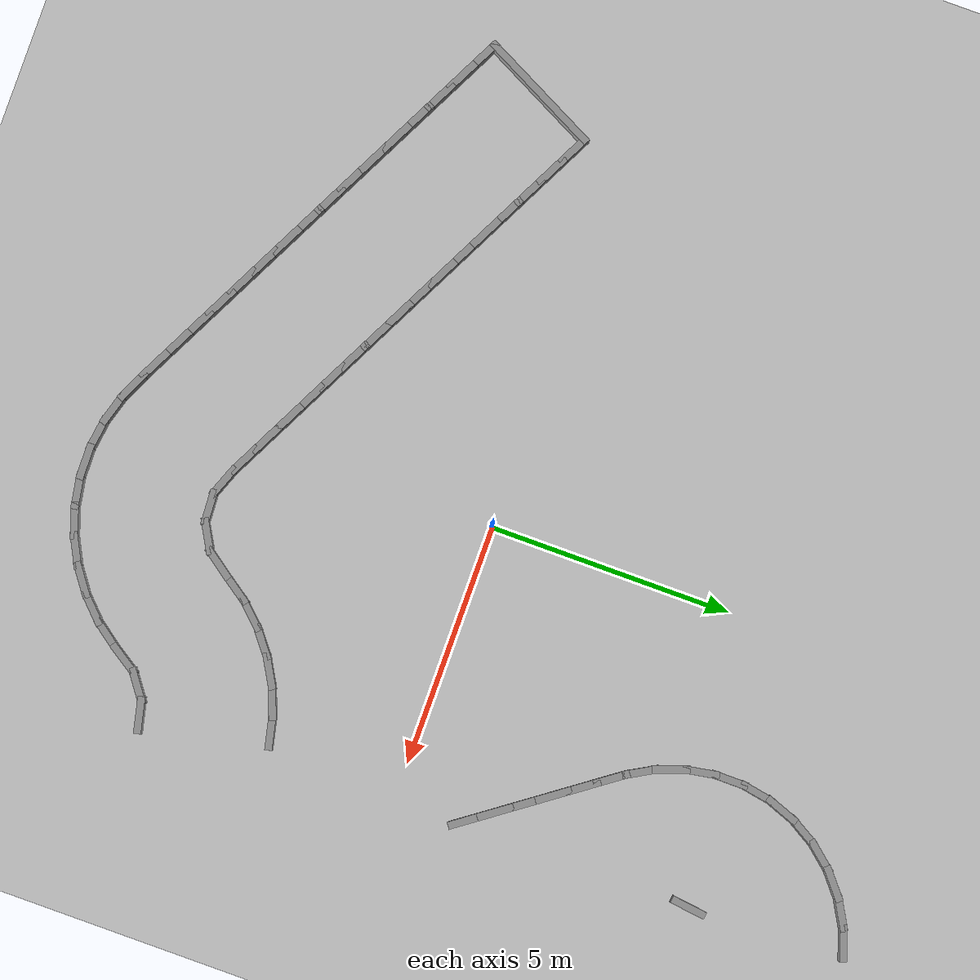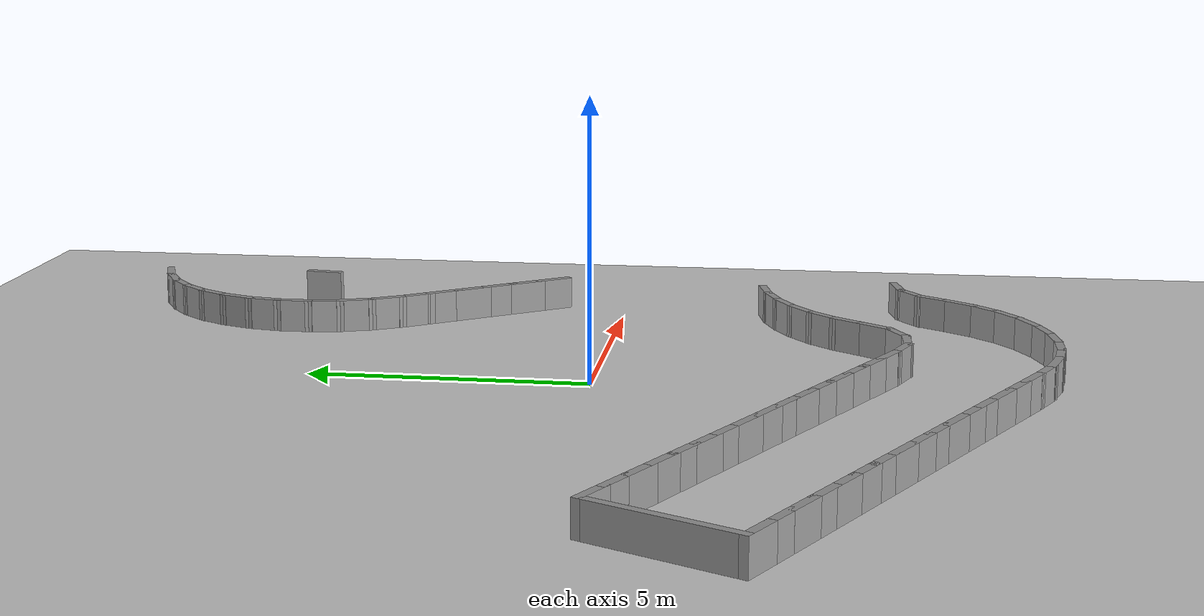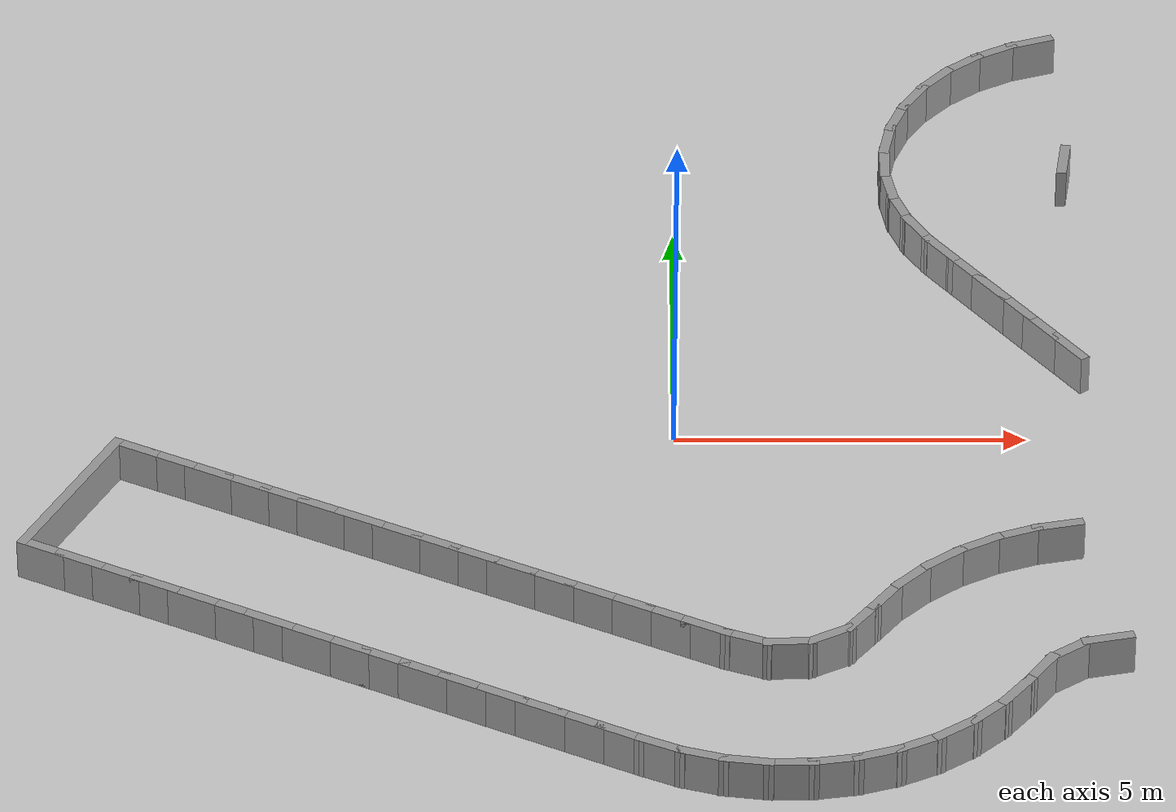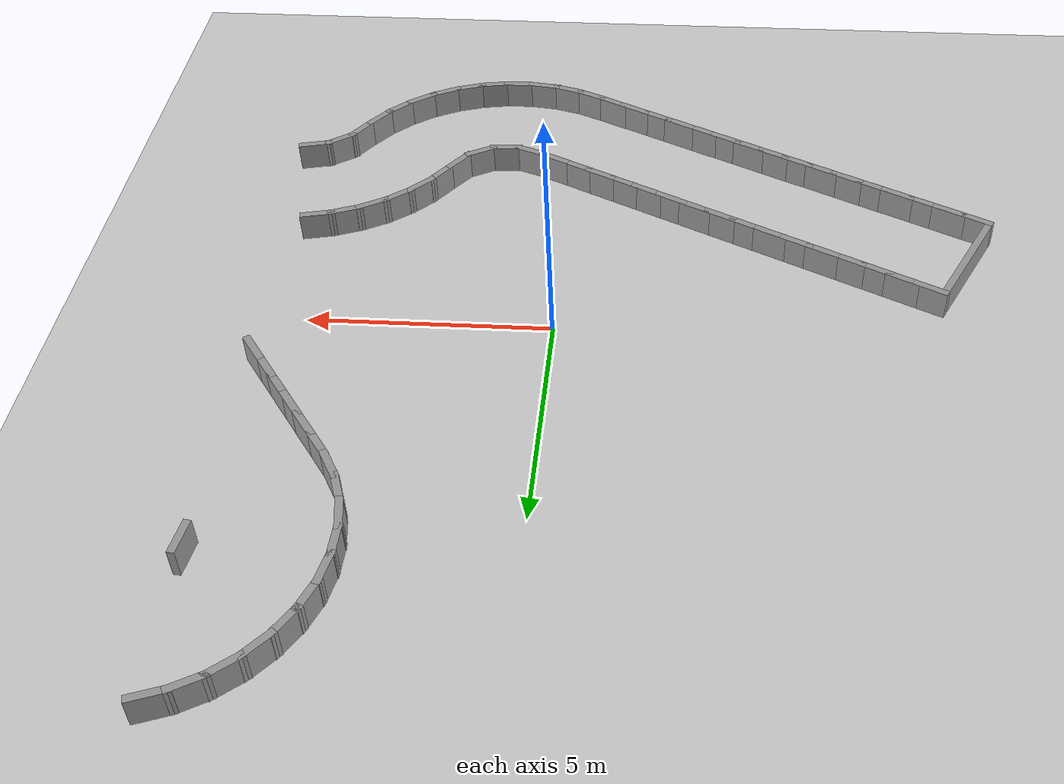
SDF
<sdf version="1.7">
 <world name="default">
  <model name="ground_plane">
   <static>1</static>
   <link name="link">
    <collision name="collision">
     <geometry><plane><normal>0 0 1</normal><size>100 100</size></plane></geometry>
     <surface><friction><ode><mu>100</mu><mu2>50</mu2></ode></friction></surface>
    </collision>
    <visual name="visual">
     <cast_shadows>0</cast_shadows>
     <geometry><plane><normal>0 0 1</normal><size>100 100</size></plane></geometry>
     <material>
      <script><uri>file://media/materials/scripts/gazebo.material</uri><name>Gazebo/Grey</name></script>
     </material>
    </visual>
   </link>
  </model>
  <model name="rand_turn_02">
   <link name="Wall_0">
    <collision name="Wall_0_Collision">
     <geometry><box><size>0.7500 0.1500 0.6000</size></box></geometry>
     <pose>0 0 0.3000 0 -0 0</pose>
    </collision>
    <visual name="Wall_0_Visual">
     <pose>0 0 0.3000 0 -0 0</pose>
     <geometry><box><size>0.7500 0.1500 0.6000</size></box></geometry>
     <material>
      <script><uri>file://media/materials/scripts/gazebo.material</uri><name>Gazebo/Grey</name></script>
      <ambient>1 1 1 1</ambient>
     </material>
    </visual>
    <pose>-7.6089 -1.0157 0 0 -0 -0.46992</pose>
   </link>
   <link name="Wall_1">
    <collision name="Wall_1_Collision">
     <geometry><box><size>0.7500 0.1500 0.6000</size></box></geometry>
     <pose>0 0 0.3000 0 -0 0</pose>
    </collision>
    <visual name="Wall_1_Visual">
     <pose>0 0 0.3000 0 -0 0</pose>
     <geometry><box><size>0.7500 0.1500 0.6000</size></box></geometry>
     <material>
      <script><uri>file://media/materials/scripts/gazebo.material</uri><name>Gazebo/Grey</name></script>
      <ambient>1 1 1 1</ambient>
     </material>
    </visual>
    <pose>-7.0739 -1.2874 0 0 -0 -0.46992</pose>
   </link>
   <link name="Wall_2">
    <collision name="Wall_2_Collision">
     <geometry><box><size>0.7500 0.1500 0.6000</size></box></geometry>
     <pose>0 0 0.3000 0 -0 0</pose>
    </collision>
    <visual name="Wall_2_Visual">
     <pose>0 0 0.3000 0 -0 0</pose>
     <geometry><box><size>0.7500 0.1500 0.6000</size></box></geometry>
     <material>
      <script><uri>file://media/materials/scripts/gazebo.material</uri><name>Gazebo/Grey</name></script>
      <ambient>1 1 1 1</ambient>
     </material>
    </visual>
    <pose>-6.5390 -1.5591 0 0 -0 -0.46992</pose>
   </link>
   <link name="Wall_3">
    <collision name="Wall_3_Collision">
     <geometry><box><size>0.7500 0.1500 0.6000</size></box></geometry>
     <pose>0 0 0.3000 0 -0 0</pose>
    </collision>
    <visual name="Wall_3_Visual">
     <pose>0 0 0.3000 0 -0 0</pose>
     <geometry><box><size>0.7500 0.1500 0.6000</size></box></geometry>
     <material>
      <script><uri>file://media/materials/scripts/gazebo.material</uri><name>Gazebo/Grey</name></script>
      <ambient>1 1 1 1</ambient>
     </material>
    </visual>
    <pose>-6.0040 -1.8308 0 0 -0 -0.46992</pose>
   </link>
   <link name="Wall_4">
    <collision name="Wall_4_Collision">
     <geometry><box><size>0.7500 0.1500 0.6000</size></box></geometry>
     <pose>0 0 0.3000 0 -0 0</pose>
    </collision>
    <visual name="Wall_4_Visual">
     <pose>0 0 0.3000 0 -0 0</pose>
     <geometry><box><size>0.7500 0.1500 0.6000</size></box></geometry>
     <material>
      <script><uri>file://media/materials/scripts/gazebo.material</uri><name>Gazebo/Grey</name></script>
      <ambient>1 1 1 1</ambient>
     </material>
    </visual>
    <pose>-5.4690 -2.1025 0 0 -0 -0.46992</pose>
   </link>
   <link name="Wall_5">
    <collision name="Wall_5_Collision">
     <geometry><box><size>0.7500 0.1500 0.6000</size></box></geometry>
     <pose>0 0 0.3000 0 -0 0</pose>
    </collision>
    <visual name="Wall_5_Visual">
     <pose>0 0 0.3000 0 -0 0</pose>
     <geometry><box><size>0.7500 0.1500 0.6000</size></box></geometry>
     <material>
      <script><uri>file://media/materials/scripts/gazebo.material</uri><name>Gazebo/Grey</name></script>
      <ambient>1 1 1 1</ambient>
     </material>
    </visual>
    <pose>-4.9341 -2.3742 0 0 -0 -0.46992</pose>
   </link>
   <link name="Wall_6">
    <collision name="Wall_6_Collision">
     <geometry><box><size>0.7500 0.1500 0.6000</size></box></geometry>
     <pose>0 0 0.3000 0 -0 0</pose>
    </collision>
    <visual name="Wall_6_Visual">
     <pose>0 0 0.3000 0 -0 0</pose>
     <geometry><box><size>0.7500 0.1500 0.6000</size></box></geometry>
     <material>
      <script><uri>file://media/materials/scripts/gazebo.material</uri><name>Gazebo/Grey</name></script>
      <ambient>1 1 1 1</ambient>
     </material>
    </visual>
    <pose>-4.3991 -2.6458 0 0 -0 -0.46992</pose>
   </link>
   <link name="Wall_7">
    <collision name="Wall_7_Collision">
     <geometry><box><size>0.7500 0.1500 0.6000</size></box></geometry>
     <pose>0 0 0.3000 0 -0 0</pose>
    </collision>
    <visual name="Wall_7_Visual">
     <pose>0 0 0.3000 0 -0 0</pose>
     <geometry><box><size>0.7500 0.1500 0.6000</size></box></geometry>
     <material>
      <script><uri>file://media/materials/scripts/gazebo.material</uri><name>Gazebo/Grey</name></script>
      <ambient>1 1 1 1</ambient>
     </material>
    </visual>
    <pose>-3.8642 -2.9175 0 0 -0 -0.46992</pose>
   </link>
   <link name="Wall_8">
    <collision name="Wall_8_Collision">
     <geometry><box><size>0.7500 0.1500 0.6000</size></box></geometry>
     <pose>0 0 0.3000 0 -0 0</pose>
    </collision>
    <visual name="Wall_8_Visual">
     <pose>0 0 0.3000 0 -0 0</pose>
     <geometry><box><size>0.7500 0.1500 0.6000</size></box></geometry>
     <material>
      <script><uri>file://media/materials/scripts/gazebo.material</uri><name>Gazebo/Grey</name></script>
      <ambient>1 1 1 1</ambient>
     </material>
    </visual>
    <pose>-3.3292 -3.1892 0 0 -0 -0.46992</pose>
   </link>
   <link name="Wall_9">
    <collision name="Wall_9_Collision">
     <geometry><box><size>0.7500 0.1500 0.6000</size></box></geometry>
     <pose>0 0 0.3000 0 -0 0</pose>
    </collision>
    <visual name="Wall_9_Visual">
     <pose>0 0 0.3000 0 -0 0</pose>
     <geometry><box><size>0.7500 0.1500 0.6000</size></box></geometry>
     <material>
      <script><uri>file://media/materials/scripts/gazebo.material</uri><name>Gazebo/Grey</name></script>
      <ambient>1 1 1 1</ambient>
     </material>
    </visual>
    <pose>-2.7942 -3.4609 0 0 -0 -0.46992</pose>
   </link>
   <link name="Wall_10">
    <collision name="Wall_10_Collision">
     <geometry><box><size>0.7500 0.1500 0.6000</size></box></geometry>
     <pose>0 0 0.3000 0 -0 0</pose>
    </collision>
    <visual name="Wall_10_Visual">
     <pose>0 0 0.3000 0 -0 0</pose>
     <geometry><box><size>0.7500 0.1500 0.6000</size></box></geometry>
     <material>
      <script><uri>file://media/materials/scripts/gazebo.material</uri><name>Gazebo/Grey</name></script>
      <ambient>1 1 1 1</ambient>
     </material>
    </visual>
    <pose>-2.2593 -3.7326 0 0 -0 -0.46992</pose>
   </link>
   <link name="Wall_11">
    <collision name="Wall_11_Collision">
     <geometry><box><size>0.7500 0.1500 0.6000</size></box></geometry>
     <pose>0 0 0.3000 0 -0 0</pose>
    </collision>
    <visual name="Wall_11_Visual">
     <pose>0 0 0.3000 0 -0 0</pose>
     <geometry><box><size>0.7500 0.1500 0.6000</size></box></geometry>
     <material>
      <script><uri>file://media/materials/scripts/gazebo.material</uri><name>Gazebo/Grey</name></script>
      <ambient>1 1 1 1</ambient>
     </material>
    </visual>
    <pose>-1.7243 -4.0043 0 0 -0 -0.46992</pose>
   </link>
   <link name="Wall_12">
    <collision name="Wall_12_Collision">
     <geometry><box><size>0.7500 0.1500 0.6000</size></box></geometry>
     <pose>0 0 0.3000 0 -0 0</pose>
    </collision>
    <visual name="Wall_12_Visual">
     <pose>0 0 0.3000 0 -0 0</pose>
     <geometry><box><size>0.7500 0.1500 0.6000</size></box></geometry>
     <material>
      <script><uri>file://media/materials/scripts/gazebo.material</uri><name>Gazebo/Grey</name></script>
      <ambient>1 1 1 1</ambient>
     </material>
    </visual>
    <pose>-1.1893 -4.2760 0 0 -0 -0.46992</pose>
   </link>
   <link name="Wall_13">
    <collision name="Wall_13_Collision">
     <geometry><box><size>0.7500 0.1500 0.6000</size></box></geometry>
     <pose>0 0 0.3000 0 -0 0</pose>
    </collision>
    <visual name="Wall_13_Visual">
     <pose>0 0 0.3000 0 -0 0</pose>
     <geometry><box><size>0.7500 0.1500 0.6000</size></box></geometry>
     <material>
      <script><uri>file://media/materials/scripts/gazebo.material</uri><name>Gazebo/Grey</name></script>
      <ambient>1 1 1 1</ambient>
     </material>
    </visual>
    <pose>-0.6544 -4.5476 0 0 -0 -0.46992</pose>
   </link>
   <link name="Wall_14">
    <collision name="Wall_14_Collision">
     <geometry><box><size>0.7500 0.1500 0.6000</size></box></geometry>
     <pose>0 0 0.3000 0 -0 0</pose>
    </collision>
    <visual name="Wall_14_Visual">
     <pose>0 0 0.3000 0 -0 0</pose>
     <geometry><box><size>0.7500 0.1500 0.6000</size></box></geometry>
     <material>
      <script><uri>file://media/materials/scripts/gazebo.material</uri><name>Gazebo/Grey</name></script>
      <ambient>1 1 1 1</ambient>
     </material>
    </visual>
    <pose>-0.1194 -4.8193 0 0 -0 -0.46992</pose>
   </link>
   <link name="Wall_15">
    <collision name="Wall_15_Collision">
     <geometry><box><size>0.7500 0.1500 0.6000</size></box></geometry>
     <pose>0 0 0.3000 0 -0 0</pose>
    </collision>
    <visual name="Wall_15_Visual">
     <pose>0 0 0.3000 0 -0 0</pose>
     <geometry><box><size>0.7500 0.1500 0.6000</size></box></geometry>
     <material>
      <script><uri>file://media/materials/scripts/gazebo.material</uri><name>Gazebo/Grey</name></script>
      <ambient>1 1 1 1</ambient>
     </material>
    </visual>
    <pose>0.4156 -5.0910 0 0 -0 -0.46992</pose>
   </link>
   <link name="Wall_16">
    <collision name="Wall_16_Collision">
     <geometry><box><size>0.7470 0.1500 0.6000</size></box></geometry>
     <pose>0 0 0.3000 0 -0 0</pose>
    </collision>
    <visual name="Wall_16_Visual">
     <pose>0 0 0.3000 0 -0 0</pose>
     <geometry><box><size>0.7470 0.1500 0.6000</size></box></geometry>
     <material>
      <script><uri>file://media/materials/scripts/gazebo.material</uri><name>Gazebo/Grey</name></script>
      <ambient>1 1 1 1</ambient>
     </material>
    </visual>
    <pose>0.9614 -5.3347 0 0 -0 -0.36971</pose>
   </link>
   <link name="Wall_17">
    <collision name="Wall_17_Collision">
     <geometry><box><size>0.7449 0.1500 0.6000</size></box></geometry>
     <pose>0 0 0.3000 0 -0 0</pose>
    </collision>
    <visual name="Wall_17_Visual">
     <pose>0 0 0.3000 0 -0 0</pose>
     <geometry><box><size>0.7449 0.1500 0.6000</size></box></geometry>
     <material>
      <script><uri>file://media/materials/scripts/gazebo.material</uri><name>Gazebo/Grey</name></script>
      <ambient>1 1 1 1</ambient>
     </material>
    </visual>
    <pose>1.5367 -5.4259 0 0 -0 0.05612</pose>
   </link>
   <link name="Wall_18">
    <collision name="Wall_18_Collision">
     <geometry><box><size>0.7449 0.1500 0.6000</size></box></geometry>
     <pose>0 0 0.3000 0 -0 0</pose>
    </collision>
    <visual name="Wall_18_Visual">
     <pose>0 0 0.3000 0 -0 0</pose>
     <geometry><box><size>0.7449 0.1500 0.6000</size></box></geometry>
     <material>
      <script><uri>file://media/materials/scripts/gazebo.material</uri><name>Gazebo/Grey</name></script>
      <ambient>1 1 1 1</ambient>
     </material>
    </visual>
    <pose>2.0937 -5.2648 0 0 -0 0.50683</pose>
   </link>
   <link name="Wall_19">
    <collision name="Wall_19_Collision">
     <geometry><box><size>0.7466 0.1500 0.6000</size></box></geometry>
     <pose>0 0 0.3000 0 -0 0</pose>
    </collision>
    <visual name="Wall_19_Visual">
     <pose>0 0 0.3000 0 -0 0</pose>
     <geometry><box><size>0.7466 0.1500 0.6000</size></box></geometry>
     <material>
      <script><uri>file://media/materials/scripts/gazebo.material</uri><name>Gazebo/Grey</name></script>
      <ambient>1 1 1 1</ambient>
     </material>
    </visual>
    <pose>2.5302 -4.8800 0 0 -0 0.93785</pose>
   </link>
   <link name="Wall_20">
    <collision name="Wall_20_Collision">
     <geometry><box><size>0.7494 0.1500 0.6000</size></box></geometry>
     <pose>0 0 0.3000 0 -0 0</pose>
    </collision>
    <visual name="Wall_20_Visual">
     <pose>0 0 0.3000 0 -0 0</pose>
     <geometry><box><size>0.7494 0.1500 0.6000</size></box></geometry>
     <material>
      <script><uri>file://media/materials/scripts/gazebo.material</uri><name>Gazebo/Grey</name></script>
      <ambient>1 1 1 1</ambient>
     </material>
    </visual>
    <pose>2.8796 -4.3946 0 0 -0 0.95586</pose>
   </link>
   <link name="Wall_21">
    <collision name="Wall_21_Collision">
     <geometry><box><size>0.7494 0.1500 0.6000</size></box></geometry>
     <pose>0 0 0.3000 0 -0 0</pose>
    </collision>
    <visual name="Wall_21_Visual">
     <pose>0 0 0.3000 0 -0 0</pose>
     <geometry><box><size>0.7494 0.1500 0.6000</size></box></geometry>
     <material>
      <script><uri>file://media/materials/scripts/gazebo.material</uri><name>Gazebo/Grey</name></script>
      <ambient>1 1 1 1</ambient>
     </material>
    </visual>
    <pose>3.2594 -3.9330 0 0 -0 0.80891</pose>
   </link>
   <link name="Wall_22">
    <collision name="Wall_22_Collision">
     <geometry><box><size>0.7494 0.1500 0.6000</size></box></geometry>
     <pose>0 0 0.3000 0 -0 0</pose>
    </collision>
    <visual name="Wall_22_Visual">
     <pose>0 0 0.3000 0 -0 0</pose>
     <geometry><box><size>0.7494 0.1500 0.6000</size></box></geometry>
     <material>
      <script><uri>file://media/materials/scripts/gazebo.material</uri><name>Gazebo/Grey</name></script>
      <ambient>1 1 1 1</ambient>
     </material>
    </visual>
    <pose>3.7027 -3.5319 0 0 -0 0.66195</pose>
   </link>
   <link name="Wall_23">
    <collision name="Wall_23_Collision">
     <geometry><box><size>0.7494 0.1500 0.6000</size></box></geometry>
     <pose>0 0 0.3000 0 -0 0</pose>
    </collision>
    <visual name="Wall_23_Visual">
     <pose>0 0 0.3000 0 -0 0</pose>
     <geometry><box><size>0.7494 0.1500 0.6000</size></box></geometry>
     <material>
      <script><uri>file://media/materials/scripts/gazebo.material</uri><name>Gazebo/Grey</name></script>
      <ambient>1 1 1 1</ambient>
     </material>
    </visual>
    <pose>4.1999 -3.2001 0 0 -0 0.51500</pose>
   </link>
   <link name="Wall_24">
    <collision name="Wall_24_Collision">
     <geometry><box><size>0.7495 0.1500 0.6000</size></box></geometry>
     <pose>0 0 0.3000 0 -0 0</pose>
    </collision>
    <visual name="Wall_24_Visual">
     <pose>0 0 0.3000 0 -0 0</pose>
     <geometry><box><size>0.7495 0.1500 0.6000</size></box></geometry>
     <material>
      <script><uri>file://media/materials/scripts/gazebo.material</uri><name>Gazebo/Grey</name></script>
      <ambient>1 1 1 1</ambient>
     </material>
    </visual>
    <pose>4.7404 -2.9446 0 0 -0 0.36805</pose>
   </link>
   <link name="Wall_25">
    <collision name="Wall_25_Collision">
     <geometry><box><size>0.7495 0.1500 0.6000</size></box></geometry>
     <pose>0 0 0.3000 0 -0 0</pose>
    </collision>
    <visual name="Wall_25_Visual">
     <pose>0 0 0.3000 0 -0 0</pose>
     <geometry><box><size>0.7495 0.1500 0.6000</size></box></geometry>
     <material>
      <script><uri>file://media/materials/scripts/gazebo.material</uri><name>Gazebo/Grey</name></script>
      <ambient>1 1 1 1</ambient>
     </material>
    </visual>
    <pose>5.3125 -2.7712 0 0 -0 0.22072</pose>
   </link>
   <link name="Wall_35">
    <collision name="Wall_35_Collision">
     <geometry><box><size>0.7500 0.1500 0.6000</size></box></geometry>
     <pose>0 0 0.3000 0 -0 0</pose>
    </collision>
    <visual name="Wall_35_Visual">
     <pose>0 0 0.3000 0 -0 0</pose>
     <geometry><box><size>0.7500 0.1500 0.6000</size></box></geometry>
     <material>
      <script><uri>file://media/materials/scripts/gazebo.material</uri><name>Gazebo/Grey</name></script>
      <ambient>1 1 1 1</ambient>
     </material>
    </visual>
    <pose>5.6630 1.4774 0 0 -0 2.19589</pose>
   </link>
   <link name="Wall_36">
    <collision name="Wall_36_Collision">
     <geometry><box><size>0.7500 0.1500 0.6000</size></box></geometry>
     <pose>0 0 0.3000 0 -0 0</pose>
    </collision>
    <visual name="Wall_36_Visual">
     <pose>0 0 0.3000 0 -0 0</pose>
     <geometry><box><size>0.7500 0.1500 0.6000</size></box></geometry>
     <material>
      <script><uri>file://media/materials/scripts/gazebo.material</uri><name>Gazebo/Grey</name></script>
      <ambient>1 1 1 1</ambient>
     </material>
    </visual>
    <pose>5.3119 1.9639 0 0 -0 2.19589</pose>
   </link>
   <link name="Wall_37">
    <collision name="Wall_37_Collision">
     <geometry><box><size>0.7500 0.1500 0.6000</size></box></geometry>
     <pose>0 0 0.3000 0 -0 0</pose>
    </collision>
    <visual name="Wall_37_Visual">
     <pose>0 0 0.3000 0 -0 0</pose>
     <geometry><box><size>0.7500 0.1500 0.6000</size></box></geometry>
     <material>
      <script><uri>file://media/materials/scripts/gazebo.material</uri><name>Gazebo/Grey</name></script>
      <ambient>1 1 1 1</ambient>
     </material>
    </visual>
    <pose>4.9608 2.4505 0 0 -0 2.19589</pose>
   </link>
   <link name="Wall_38">
    <collision name="Wall_38_Collision">
     <geometry><box><size>0.7500 0.1500 0.6000</size></box></geometry>
     <pose>0 0 0.3000 0 -0 0</pose>
    </collision>
    <visual name="Wall_38_Visual">
     <pose>0 0 0.3000 0 -0 0</pose>
     <geometry><box><size>0.7500 0.1500 0.6000</size></box></geometry>
     <material>
      <script><uri>file://media/materials/scripts/gazebo.material</uri><name>Gazebo/Grey</name></script>
      <ambient>1 1 1 1</ambient>
     </material>
    </visual>
    <pose>4.6097 2.9370 0 0 -0 2.19589</pose>
   </link>
   <link name="Wall_39">
    <collision name="Wall_39_Collision">
     <geometry><box><size>0.7500 0.1500 0.6000</size></box></geometry>
     <pose>0 0 0.3000 0 -0 0</pose>
    </collision>
    <visual name="Wall_39_Visual">
     <pose>0 0 0.3000 0 -0 0</pose>
     <geometry><box><size>0.7500 0.1500 0.6000</size></box></geometry>
     <material>
      <script><uri>file://media/materials/scripts/gazebo.material</uri><name>Gazebo/Grey</name></script>
      <ambient>1 1 1 1</ambient>
     </material>
    </visual>
    <pose>4.2586 3.4236 0 0 -0 2.19589</pose>
   </link>
   <link name="Wall_40">
    <collision name="Wall_40_Collision">
     <geometry><box><size>0.7500 0.1500 0.6000</size></box></geometry>
     <pose>0 0 0.3000 0 -0 0</pose>
    </collision>
    <visual name="Wall_40_Visual">
     <pose>0 0 0.3000 0 -0 0</pose>
     <geometry><box><size>0.7500 0.1500 0.6000</size></box></geometry>
     <material>
      <script><uri>file://media/materials/scripts/gazebo.material</uri><name>Gazebo/Grey</name></script>
      <ambient>1 1 1 1</ambient>
     </material>
    </visual>
    <pose>3.9081 3.9105 0 0 -0 2.19328</pose>
   </link>
   <link name="Wall_41">
    <collision name="Wall_41_Collision">
     <geometry><box><size>0.7492 0.1500 0.6000</size></box></geometry>
     <pose>0 0 0.3000 0 -0 0</pose>
    </collision>
    <visual name="Wall_41_Visual">
     <pose>0 0 0.3000 0 -0 0</pose>
     <geometry><box><size>0.7492 0.1500 0.6000</size></box></geometry>
     <material>
      <script><uri>file://media/materials/scripts/gazebo.material</uri><name>Gazebo/Grey</name></script>
      <ambient>1 1 1 1</ambient>
     </material>
    </visual>
    <pose>3.5852 4.4147 0 0 -0 2.08748</pose>
   </link>
   <link name="Wall_42">
    <collision name="Wall_42_Collision">
     <geometry><box><size>0.7492 0.1500 0.6000</size></box></geometry>
     <pose>0 0 0.3000 0 -0 0</pose>
    </collision>
    <visual name="Wall_42_Visual">
     <pose>0 0 0.3000 0 -0 0</pose>
     <geometry><box><size>0.7492 0.1500 0.6000</size></box></geometry>
     <material>
      <script><uri>file://media/materials/scripts/gazebo.material</uri><name>Gazebo/Grey</name></script>
      <ambient>1 1 1 1</ambient>
     </material>
    </visual>
    <pose>3.3367 4.9575 0 0 -0 1.91292</pose>
   </link>
   <link name="Wall_43">
    <collision name="Wall_43_Collision">
     <geometry><box><size>0.7492 0.1500 0.6000</size></box></geometry>
     <pose>0 0 0.3000 0 -0 0</pose>
    </collision>
    <visual name="Wall_43_Visual">
     <pose>0 0 0.3000 0 -0 0</pose>
     <geometry><box><size>0.7492 0.1500 0.6000</size></box></geometry>
     <material>
      <script><uri>file://media/materials/scripts/gazebo.material</uri><name>Gazebo/Grey</name></script>
      <ambient>1 1 1 1</ambient>
     </material>
    </visual>
    <pose>3.1866 5.5352 0 0 -0 1.73694</pose>
   </link>
   <link name="Wall_44">
    <collision name="Wall_44_Collision">
     <geometry><box><size>0.7491 0.1500 0.6000</size></box></geometry>
     <pose>0 0 0.3000 0 -0 0</pose>
    </collision>
    <visual name="Wall_44_Visual">
     <pose>0 0 0.3000 0 -0 0</pose>
     <geometry><box><size>0.7491 0.1500 0.6000</size></box></geometry>
     <material>
      <script><uri>file://media/materials/scripts/gazebo.material</uri><name>Gazebo/Grey</name></script>
      <ambient>1 1 1 1</ambient>
     </material>
    </visual>
    <pose>3.1393 6.1302 0 0 -0 1.56327</pose>
   </link>
   <link name="Wall_45">
    <collision name="Wall_45_Collision">
     <geometry><box><size>0.7492 0.1500 0.6000</size></box></geometry>
     <pose>0 0 0.3000 0 -0 0</pose>
    </collision>
    <visual name="Wall_45_Visual">
     <pose>0 0 0.3000 0 -0 0</pose>
     <geometry><box><size>0.7492 0.1500 0.6000</size></box></geometry>
     <material>
      <script><uri>file://media/materials/scripts/gazebo.material</uri><name>Gazebo/Grey</name></script>
      <ambient>1 1 1 1</ambient>
     </material>
    </visual>
    <pose>3.1956 6.7245 0 0 -0 1.38959</pose>
   </link>
   <link name="Wall_46">
    <collision name="Wall_46_Collision">
     <geometry><box><size>0.7492 0.1500 0.6000</size></box></geometry>
     <pose>0 0 0.3000 0 -0 0</pose>
    </collision>
    <visual name="Wall_46_Visual">
     <pose>0 0 0.3000 0 -0 0</pose>
     <geometry><box><size>0.7492 0.1500 0.6000</size></box></geometry>
     <material>
      <script><uri>file://media/materials/scripts/gazebo.material</uri><name>Gazebo/Grey</name></script>
      <ambient>1 1 1 1</ambient>
     </material>
    </visual>
    <pose>3.3543 7.2999 0 0 -0 1.21352</pose>
   </link>
   <link name="Wall_47">
    <collision name="Wall_47_Collision">
     <geometry><box><size>0.7492 0.1500 0.6000</size></box></geometry>
     <pose>0 0 0.3000 0 -0 0</pose>
    </collision>
    <visual name="Wall_47_Visual">
     <pose>0 0 0.3000 0 -0 0</pose>
     <geometry><box><size>0.7492 0.1500 0.6000</size></box></geometry>
     <material>
      <script><uri>file://media/materials/scripts/gazebo.material</uri><name>Gazebo/Grey</name></script>
      <ambient>1 1 1 1</ambient>
     </material>
    </visual>
    <pose>3.6111 7.8387 0 0 -0 1.03878</pose>
   </link>
   <link name="Wall_48">
    <collision name="Wall_48_Collision">
     <geometry><box><size>0.7491 0.1500 0.6000</size></box></geometry>
     <pose>0 0 0.3000 0 -0 0</pose>
    </collision>
    <visual name="Wall_48_Visual">
     <pose>0 0 0.3000 0 -0 0</pose>
     <geometry><box><size>0.7491 0.1500 0.6000</size></box></geometry>
     <material>
      <script><uri>file://media/materials/scripts/gazebo.material</uri><name>Gazebo/Grey</name></script>
      <ambient>1 1 1 1</ambient>
     </material>
    </visual>
    <pose>3.9573 8.3249 0 0 -0 0.86510</pose>
   </link>
   <link name="Wall_49">
    <collision name="Wall_49_Collision">
     <geometry><box><size>0.7492 0.1500 0.6000</size></box></geometry>
     <pose>0 0 0.3000 0 -0 0</pose>
    </collision>
    <visual name="Wall_49_Visual">
     <pose>0 0 0.3000 0 -0 0</pose>
     <geometry><box><size>0.7492 0.1500 0.6000</size></box></geometry>
     <material>
      <script><uri>file://media/materials/scripts/gazebo.material</uri><name>Gazebo/Grey</name></script>
      <ambient>1 1 1 1</ambient>
     </material>
    </visual>
    <pose>4.3825 8.7439 0 0 -0 0.69125</pose>
   </link>
   <link name="Wall_50">
    <collision name="Wall_50_Collision">
     <geometry><box><size>0.7492 0.1500 0.6000</size></box></geometry>
     <pose>0 0 0.3000 0 -0 0</pose>
    </collision>
    <visual name="Wall_50_Visual">
     <pose>0 0 0.3000 0 -0 0</pose>
     <geometry><box><size>0.7492 0.1500 0.6000</size></box></geometry>
     <material>
      <script><uri>file://media/materials/scripts/gazebo.material</uri><name>Gazebo/Grey</name></script>
      <ambient>1 1 1 1</ambient>
     </material>
    </visual>
    <pose>4.8742 9.0823 0 0 -0 0.51429</pose>
   </link>
   <link name="Wall_51">
    <collision name="Wall_51_Collision">
     <geometry><box><size>0.7491 0.1500 0.6000</size></box></geometry>
     <pose>0 0 0.3000 0 -0 0</pose>
    </collision>
    <visual name="Wall_51_Visual">
     <pose>0 0 0.3000 0 -0 0</pose>
     <geometry><box><size>0.7491 0.1500 0.6000</size></box></geometry>
     <material>
      <script><uri>file://media/materials/scripts/gazebo.material</uri><name>Gazebo/Grey</name></script>
      <ambient>1 1 1 1</ambient>
     </material>
    </visual>
    <pose>5.4174 9.3298 0 0 -0 0.34062</pose>
   </link>
   <link name="Wall_73">
    <collision name="Wall_73_Collision">
     <geometry><box><size>0.7500 0.1500 0.6000</size></box></geometry>
     <pose>0 0 0.3000 0 -0 0</pose>
    </collision>
    <visual name="Wall_73_Visual">
     <pose>0 0 0.3000 0 -0 0</pose>
     <geometry><box><size>0.7500 0.1500 0.6000</size></box></geometry>
     <material>
      <script><uri>file://media/materials/scripts/gazebo.material</uri><name>Gazebo/Grey</name></script>
      <ambient>1 1 1 1</ambient>
     </material>
    </visual>
    <pose>-8.7888 -3.3390 0 0 -0 -0.46992</pose>
   </link>
   <link name="Wall_74">
    <collision name="Wall_74_Collision">
     <geometry><box><size>0.7500 0.1500 0.6000</size></box></geometry>
     <pose>0 0 0.3000 0 -0 0</pose>
    </collision>
    <visual name="Wall_74_Visual">
     <pose>0 0 0.3000 0 -0 0</pose>
     <geometry><box><size>0.7500 0.1500 0.6000</size></box></geometry>
     <material>
      <script><uri>file://media/materials/scripts/gazebo.material</uri><name>Gazebo/Grey</name></script>
      <ambient>1 1 1 1</ambient>
     </material>
    </visual>
    <pose>-8.2538 -3.6107 0 0 -0 -0.46992</pose>
   </link>
   <link name="Wall_75">
    <collision name="Wall_75_Collision">
     <geometry><box><size>0.7500 0.1500 0.6000</size></box></geometry>
     <pose>0 0 0.3000 0 -0 0</pose>
    </collision>
    <visual name="Wall_75_Visual">
     <pose>0 0 0.3000 0 -0 0</pose>
     <geometry><box><size>0.7500 0.1500 0.6000</size></box></geometry>
     <material>
      <script><uri>file://media/materials/scripts/gazebo.material</uri><name>Gazebo/Grey</name></script>
      <ambient>1 1 1 1</ambient>
     </material>
    </visual>
    <pose>-7.7189 -3.8824 0 0 -0 -0.46992</pose>
   </link>
   <link name="Wall_76">
    <collision name="Wall_76_Collision">
     <geometry><box><size>0.7500 0.1500 0.6000</size></box></geometry>
     <pose>0 0 0.3000 0 -0 0</pose>
    </collision>
    <visual name="Wall_76_Visual">
     <pose>0 0 0.3000 0 -0 0</pose>
     <geometry><box><size>0.7500 0.1500 0.6000</size></box></geometry>
     <material>
      <script><uri>file://media/materials/scripts/gazebo.material</uri><name>Gazebo/Grey</name></script>
      <ambient>1 1 1 1</ambient>
     </material>
    </visual>
    <pose>-7.1839 -4.1541 0 0 -0 -0.46992</pose>
   </link>
   <link name="Wall_77">
    <collision name="Wall_77_Collision">
     <geometry><box><size>0.7500 0.1500 0.6000</size></box></geometry>
     <pose>0 0 0.3000 0 -0 0</pose>
    </collision>
    <visual name="Wall_77_Visual">
     <pose>0 0 0.3000 0 -0 0</pose>
     <geometry><box><size>0.7500 0.1500 0.6000</size></box></geometry>
     <material>
      <script><uri>file://media/materials/scripts/gazebo.material</uri><name>Gazebo/Grey</name></script>
      <ambient>1 1 1 1</ambient>
     </material>
    </visual>
    <pose>-6.6490 -4.4258 0 0 -0 -0.46992</pose>
   </link>
   <link name="Wall_78">
    <collision name="Wall_78_Collision">
     <geometry><box><size>0.7500 0.1500 0.6000</size></box></geometry>
     <pose>0 0 0.3000 0 -0 0</pose>
    </collision>
    <visual name="Wall_78_Visual">
     <pose>0 0 0.3000 0 -0 0</pose>
     <geometry><box><size>0.7500 0.1500 0.6000</size></box></geometry>
     <material>
      <script><uri>file://media/materials/scripts/gazebo.material</uri><name>Gazebo/Grey</name></script>
      <ambient>1 1 1 1</ambient>
     </material>
    </visual>
    <pose>-6.1140 -4.6974 0 0 -0 -0.46992</pose>
   </link>
   <link name="Wall_79">
    <collision name="Wall_79_Collision">
     <geometry><box><size>0.7500 0.1500 0.6000</size></box></geometry>
     <pose>0 0 0.3000 0 -0 0</pose>
    </collision>
    <visual name="Wall_79_Visual">
     <pose>0 0 0.3000 0 -0 0</pose>
     <geometry><box><size>0.7500 0.1500 0.6000</size></box></geometry>
     <material>
      <script><uri>file://media/materials/scripts/gazebo.material</uri><name>Gazebo/Grey</name></script>
      <ambient>1 1 1 1</ambient>
     </material>
    </visual>
    <pose>-5.5790 -4.9691 0 0 -0 -0.46992</pose>
   </link>
   <link name="Wall_80">
    <collision name="Wall_80_Collision">
     <geometry><box><size>0.7500 0.1500 0.6000</size></box></geometry>
     <pose>0 0 0.3000 0 -0 0</pose>
    </collision>
    <visual name="Wall_80_Visual">
     <pose>0 0 0.3000 0 -0 0</pose>
     <geometry><box><size>0.7500 0.1500 0.6000</size></box></geometry>
     <material>
      <script><uri>file://media/materials/scripts/gazebo.material</uri><name>Gazebo/Grey</name></script>
      <ambient>1 1 1 1</ambient>
     </material>
    </visual>
    <pose>-5.0441 -5.2408 0 0 -0 -0.46992</pose>
   </link>
   <link name="Wall_81">
    <collision name="Wall_81_Collision">
     <geometry><box><size>0.7500 0.1500 0.6000</size></box></geometry>
     <pose>0 0 0.3000 0 -0 0</pose>
    </collision>
    <visual name="Wall_81_Visual">
     <pose>0 0 0.3000 0 -0 0</pose>
     <geometry><box><size>0.7500 0.1500 0.6000</size></box></geometry>
     <material>
      <script><uri>file://media/materials/scripts/gazebo.material</uri><name>Gazebo/Grey</name></script>
      <ambient>1 1 1 1</ambient>
     </material>
    </visual>
    <pose>-4.5091 -5.5125 0 0 -0 -0.46992</pose>
   </link>
   <link name="Wall_82">
    <collision name="Wall_82_Collision">
     <geometry><box><size>0.7500 0.1500 0.6000</size></box></geometry>
     <pose>0 0 0.3000 0 -0 0</pose>
    </collision>
    <visual name="Wall_82_Visual">
     <pose>0 0 0.3000 0 -0 0</pose>
     <geometry><box><size>0.7500 0.1500 0.6000</size></box></geometry>
     <material>
      <script><uri>file://media/materials/scripts/gazebo.material</uri><name>Gazebo/Grey</name></script>
      <ambient>1 1 1 1</ambient>
     </material>
    </visual>
    <pose>-3.9741 -5.7842 0 0 -0 -0.46992</pose>
   </link>
   <link name="Wall_83">
    <collision name="Wall_83_Collision">
     <geometry><box><size>0.7500 0.1500 0.6000</size></box></geometry>
     <pose>0 0 0.3000 0 -0 0</pose>
    </collision>
    <visual name="Wall_83_Visual">
     <pose>0 0 0.3000 0 -0 0</pose>
     <geometry><box><size>0.7500 0.1500 0.6000</size></box></geometry>
     <material>
      <script><uri>file://media/materials/scripts/gazebo.material</uri><name>Gazebo/Grey</name></script>
      <ambient>1 1 1 1</ambient>
     </material>
    </visual>
    <pose>-3.4392 -6.0559 0 0 -0 -0.46992</pose>
   </link>
   <link name="Wall_84">
    <collision name="Wall_84_Collision">
     <geometry><box><size>0.7500 0.1500 0.6000</size></box></geometry>
     <pose>0 0 0.3000 0 -0 0</pose>
    </collision>
    <visual name="Wall_84_Visual">
     <pose>0 0 0.3000 0 -0 0</pose>
     <geometry><box><size>0.7500 0.1500 0.6000</size></box></geometry>
     <material>
      <script><uri>file://media/materials/scripts/gazebo.material</uri><name>Gazebo/Grey</name></script>
      <ambient>1 1 1 1</ambient>
     </material>
    </visual>
    <pose>-2.9042 -6.3276 0 0 -0 -0.46992</pose>
   </link>
   <link name="Wall_85">
    <collision name="Wall_85_Collision">
     <geometry><box><size>0.7500 0.1500 0.6000</size></box></geometry>
     <pose>0 0 0.3000 0 -0 0</pose>
    </collision>
    <visual name="Wall_85_Visual">
     <pose>0 0 0.3000 0 -0 0</pose>
     <geometry><box><size>0.7500 0.1500 0.6000</size></box></geometry>
     <material>
      <script><uri>file://media/materials/scripts/gazebo.material</uri><name>Gazebo/Grey</name></script>
      <ambient>1 1 1 1</ambient>
     </material>
    </visual>
    <pose>-2.3692 -6.5992 0 0 -0 -0.46992</pose>
   </link>
   <link name="Wall_86">
    <collision name="Wall_86_Collision">
     <geometry><box><size>0.7500 0.1500 0.6000</size></box></geometry>
     <pose>0 0 0.3000 0 -0 0</pose>
    </collision>
    <visual name="Wall_86_Visual">
     <pose>0 0 0.3000 0 -0 0</pose>
     <geometry><box><size>0.7500 0.1500 0.6000</size></box></geometry>
     <material>
      <script><uri>file://media/materials/scripts/gazebo.material</uri><name>Gazebo/Grey</name></script>
      <ambient>1 1 1 1</ambient>
     </material>
    </visual>
    <pose>-1.8343 -6.8709 0 0 -0 -0.46992</pose>
   </link>
   <link name="Wall_87">
    <collision name="Wall_87_Collision">
     <geometry><box><size>0.7500 0.1500 0.6000</size></box></geometry>
     <pose>0 0 0.3000 0 -0 0</pose>
    </collision>
    <visual name="Wall_87_Visual">
     <pose>0 0 0.3000 0 -0 0</pose>
     <geometry><box><size>0.7500 0.1500 0.6000</size></box></geometry>
     <material>
      <script><uri>file://media/materials/scripts/gazebo.material</uri><name>Gazebo/Grey</name></script>
      <ambient>1 1 1 1</ambient>
     </material>
    </visual>
    <pose>-1.2993 -7.1426 0 0 -0 -0.46992</pose>
   </link>
   <link name="Wall_88">
    <collision name="Wall_88_Collision">
     <geometry><box><size>0.7500 0.1500 0.6000</size></box></geometry>
     <pose>0 0 0.3000 0 -0 0</pose>
    </collision>
    <visual name="Wall_88_Visual">
     <pose>0 0 0.3000 0 -0 0</pose>
     <geometry><box><size>0.7500 0.1500 0.6000</size></box></geometry>
     <material>
      <script><uri>file://media/materials/scripts/gazebo.material</uri><name>Gazebo/Grey</name></script>
      <ambient>1 1 1 1</ambient>
     </material>
    </visual>
    <pose>-0.7643 -7.4143 0 0 -0 -0.46992</pose>
   </link>
   <link name="Wall_89">
    <collision name="Wall_89_Collision">
     <geometry><box><size>0.7496 0.1500 0.6000</size></box></geometry>
     <pose>0 0 0.3000 0 -0 0</pose>
    </collision>
    <visual name="Wall_89_Visual">
     <pose>0 0 0.3000 0 -0 0</pose>
     <geometry><box><size>0.7496 0.1500 0.6000</size></box></geometry>
     <material>
      <script><uri>file://media/materials/scripts/gazebo.material</uri><name>Gazebo/Grey</name></script>
      <ambient>1 1 1 1</ambient>
     </material>
    </visual>
    <pose>-0.2250 -7.6765 0 0 -0 -0.43501</pose>
   </link>
   <link name="Wall_90">
    <collision name="Wall_90_Collision">
     <geometry><box><size>0.7494 0.1500 0.6000</size></box></geometry>
     <pose>0 0 0.3000 0 -0 0</pose>
    </collision>
    <visual name="Wall_90_Visual">
     <pose>0 0 0.3000 0 -0 0</pose>
     <geometry><box><size>0.7494 0.1500 0.6000</size></box></geometry>
     <material>
      <script><uri>file://media/materials/scripts/gazebo.material</uri><name>Gazebo/Grey</name></script>
      <ambient>1 1 1 1</ambient>
     </material>
    </visual>
    <pose>0.3339 -7.8892 0 0 -0 -0.29212</pose>
   </link>
   <link name="Wall_91">
    <collision name="Wall_91_Collision">
     <geometry><box><size>0.7494 0.1500 0.6000</size></box></geometry>
     <pose>0 0 0.3000 0 -0 0</pose>
    </collision>
    <visual name="Wall_91_Visual">
     <pose>0 0 0.3000 0 -0 0</pose>
     <geometry><box><size>0.7494 0.1500 0.6000</size></box></geometry>
     <material>
      <script><uri>file://media/materials/scripts/gazebo.material</uri><name>Gazebo/Grey</name></script>
      <ambient>1 1 1 1</ambient>
     </material>
    </visual>
    <pose>0.9177 -8.0172 0 0 -0 -0.13971</pose>
   </link>
   <link name="Wall_92">
    <collision name="Wall_92_Collision">
     <geometry><box><size>0.7494 0.1500 0.6000</size></box></geometry>
     <pose>0 0 0.3000 0 -0 0</pose>
    </collision>
    <visual name="Wall_92_Visual">
     <pose>0 0 0.3000 0 -0 0</pose>
     <geometry><box><size>0.7494 0.1500 0.6000</size></box></geometry>
     <material>
      <script><uri>file://media/materials/scripts/gazebo.material</uri><name>Gazebo/Grey</name></script>
      <ambient>1 1 1 1</ambient>
     </material>
    </visual>
    <pose>1.5141 -8.0551 0 0 -0 0.01270</pose>
   </link>
   <link name="Wall_93">
    <collision name="Wall_93_Collision">
     <geometry><box><size>0.7494 0.1500 0.6000</size></box></geometry>
     <pose>0 0 0.3000 0 -0 0</pose>
    </collision>
    <visual name="Wall_93_Visual">
     <pose>0 0 0.3000 0 -0 0</pose>
     <geometry><box><size>0.7494 0.1500 0.6000</size></box></geometry>
     <material>
      <script><uri>file://media/materials/scripts/gazebo.material</uri><name>Gazebo/Grey</name></script>
      <ambient>1 1 1 1</ambient>
     </material>
    </visual>
    <pose>2.1093 -8.0021 0 0 -0 0.16511</pose>
   </link>
   <link name="Wall_94">
    <collision name="Wall_94_Collision">
     <geometry><box><size>0.7494 0.1500 0.6000</size></box></geometry>
     <pose>0 0 0.3000 0 -0 0</pose>
    </collision>
    <visual name="Wall_94_Visual">
     <pose>0 0 0.3000 0 -0 0</pose>
     <geometry><box><size>0.7494 0.1500 0.6000</size></box></geometry>
     <material>
      <script><uri>file://media/materials/scripts/gazebo.material</uri><name>Gazebo/Grey</name></script>
      <ambient>1 1 1 1</ambient>
     </material>
    </visual>
    <pose>2.6897 -7.8592 0 0 -0 0.31752</pose>
   </link>
   <link name="Wall_95">
    <collision name="Wall_95_Collision">
     <geometry><box><size>0.7494 0.1500 0.6000</size></box></geometry>
     <pose>0 0 0.3000 0 -0 0</pose>
    </collision>
    <visual name="Wall_95_Visual">
     <pose>0 0 0.3000 0 -0 0</pose>
     <geometry><box><size>0.7494 0.1500 0.6000</size></box></geometry>
     <material>
      <script><uri>file://media/materials/scripts/gazebo.material</uri><name>Gazebo/Grey</name></script>
      <ambient>1 1 1 1</ambient>
     </material>
    </visual>
    <pose>3.2416 -7.6300 0 0 -0 0.46994</pose>
   </link>
   <link name="Wall_96">
    <collision name="Wall_96_Collision">
     <geometry><box><size>0.7494 0.1500 0.6000</size></box></geometry>
     <pose>0 0 0.3000 0 -0 0</pose>
    </collision>
    <visual name="Wall_96_Visual">
     <pose>0 0 0.3000 0 -0 0</pose>
     <geometry><box><size>0.7494 0.1500 0.6000</size></box></geometry>
     <material>
      <script><uri>file://media/materials/scripts/gazebo.material</uri><name>Gazebo/Grey</name></script>
      <ambient>1 1 1 1</ambient>
     </material>
    </visual>
    <pose>3.7523 -7.3196 0 0 -0 0.62235</pose>
   </link>
   <link name="Wall_97">
    <collision name="Wall_97_Collision">
     <geometry><box><size>0.7494 0.1500 0.6000</size></box></geometry>
     <pose>0 0 0.3000 0 -0 0</pose>
    </collision>
    <visual name="Wall_97_Visual">
     <pose>0 0 0.3000 0 -0 0</pose>
     <geometry><box><size>0.7494 0.1500 0.6000</size></box></geometry>
     <material>
      <script><uri>file://media/materials/scripts/gazebo.material</uri><name>Gazebo/Grey</name></script>
      <ambient>1 1 1 1</ambient>
     </material>
    </visual>
    <pose>4.2099 -6.9352 0 0 -0 0.77476</pose>
   </link>
   <link name="Wall_98">
    <collision name="Wall_98_Collision">
     <geometry><box><size>0.7494 0.1500 0.6000</size></box></geometry>
     <pose>0 0 0.3000 0 -0 0</pose>
    </collision>
    <visual name="Wall_98_Visual">
     <pose>0 0 0.3000 0 -0 0</pose>
     <geometry><box><size>0.7494 0.1500 0.6000</size></box></geometry>
     <material>
      <script><uri>file://media/materials/scripts/gazebo.material</uri><name>Gazebo/Grey</name></script>
      <ambient>1 1 1 1</ambient>
     </material>
    </visual>
    <pose>4.6039 -6.4858 0 0 -0 0.92717</pose>
   </link>
   <link name="Wall_99">
    <collision name="Wall_99_Collision">
     <geometry><box><size>0.7486 0.1500 0.6000</size></box></geometry>
     <pose>0 0 0.3000 0 -0 0</pose>
    </collision>
    <visual name="Wall_99_Visual">
     <pose>0 0 0.3000 0 -0 0</pose>
     <geometry><box><size>0.7486 0.1500 0.6000</size></box></geometry>
     <material>
      <script><uri>file://media/materials/scripts/gazebo.material</uri><name>Gazebo/Grey</name></script>
      <ambient>1 1 1 1</ambient>
     </material>
    </visual>
    <pose>4.9491 -5.9966 0 0 -0 0.98550</pose>
   </link>
   <link name="Wall_100">
    <collision name="Wall_100_Collision">
     <geometry><box><size>0.7459 0.1500 0.6000</size></box></geometry>
     <pose>0 0 0.3000 0 -0 0</pose>
    </collision>
    <visual name="Wall_100_Visual">
     <pose>0 0 0.3000 0 -0 0</pose>
     <geometry><box><size>0.7459 0.1500 0.6000</size></box></geometry>
     <material>
      <script><uri>file://media/materials/scripts/gazebo.material</uri><name>Gazebo/Grey</name></script>
      <ambient>1 1 1 1</ambient>
     </material>
    </visual>
    <pose>5.3558 -5.5724 0 0 -0 0.62673</pose>
   </link>
   <link name="Wall_101">
    <collision name="Wall_101_Collision">
     <geometry><box><size>0.7463 0.1500 0.6000</size></box></geometry>
     <pose>0 0 0.3000 0 -0 0</pose>
    </collision>
    <visual name="Wall_101_Visual">
     <pose>0 0 0.3000 0 -0 0</pose>
     <geometry><box><size>0.7463 0.1500 0.6000</size></box></geometry>
     <material>
      <script><uri>file://media/materials/scripts/gazebo.material</uri><name>Gazebo/Grey</name></script>
      <ambient>1 1 1 1</ambient>
     </material>
    </visual>
    <pose>5.8877 -5.3312 0 0 -0 0.22511</pose>
   </link>
   <link name="Wall_126">
    <collision name="Wall_126_Collision">
     <geometry><box><size>0.7370 0.1500 0.6000</size></box></geometry>
     <pose>0 0 0.3000 0 -0 0</pose>
    </collision>
    <visual name="Wall_126_Visual">
     <pose>0 0 0.3000 0 -0 0</pose>
     <geometry><box><size>0.7370 0.1500 0.6000</size></box></geometry>
     <material>
      <script><uri>file://media/materials/scripts/gazebo.material</uri><name>Gazebo/Grey</name></script>
      <ambient>1 1 1 1</ambient>
     </material>
    </visual>
    <pose>5.7914 6.2058 0 0 -0 1.44012</pose>
   </link>
   <link name="Wall_146">
    <collision name="Wall_146_Collision">
     <geometry><box><size>2.7557 0.1500 0.6000</size></box></geometry>
     <pose>0 0 0.3000 0 -0 0</pose>
    </collision>
    <visual name="Wall_146_Visual">
     <pose>0 0 0.3000 0 -0 0</pose>
     <geometry><box><size>2.7557 0.1500 0.6000</size></box></geometry>
     <material>
      <script><uri>file://media/materials/scripts/gazebo.material</uri><name>Gazebo/Grey</name></script>
      <ambient>1 1 1 1</ambient>
     </material>
    </visual>
    <pose>-8.4663 -2.0415 0 0 -0 1.10088</pose>
   </link>
   <static>1</static>
  </model>
 </world>
</sdf>
